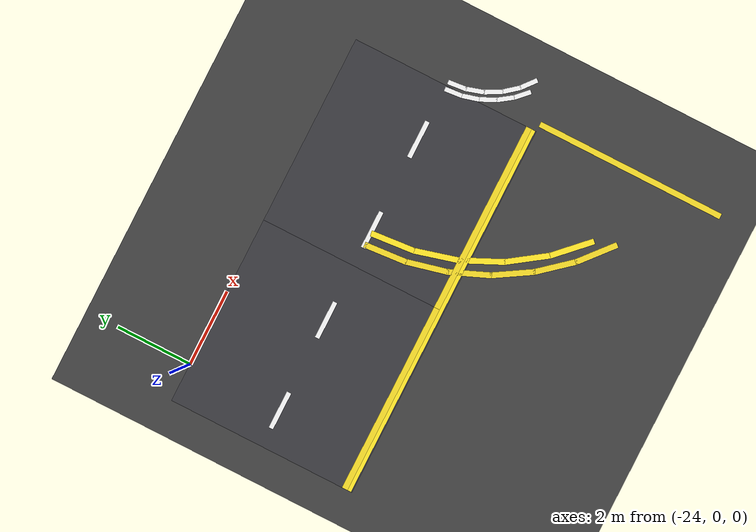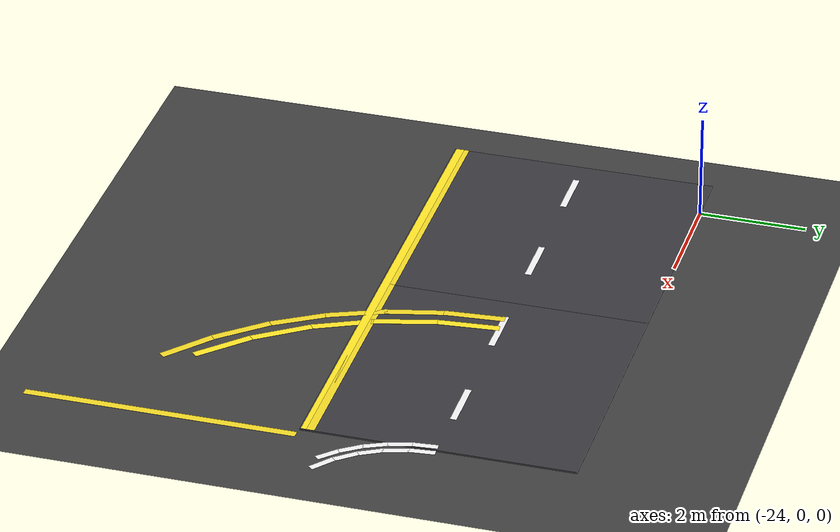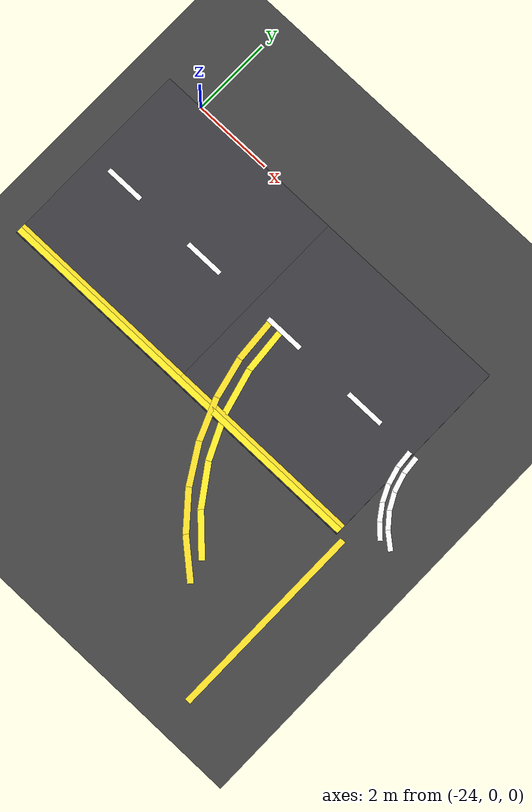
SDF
<sdf version="1.7">
 <world name="compact_city">
  <model name="ground_plane">
   <static>1</static>
   <pose>0 0 0.01 0 -0 0</pose>
   <link name="link">
    <collision name="collision">
     <geometry><plane><normal>0 0 1</normal><size>200 200</size></plane></geometry>
    </collision>
    <visual name="visual">
     <geometry><plane><normal>0 0 1</normal><size>200 200</size></plane></geometry>
     <material>
      <ambient>0.2 0.2 0.2 1</ambient>
      <diffuse>0.25 0.25 0.25 1</diffuse>
      <specular>0.1 0.1 0.1 1</specular>
     </material>
    </visual>
   </link>
  </model>
  <model name="road_tile_46">
   <static>1</static>
   <pose>-22.5 -2.5 0.015 0 -0 0</pose>
   <link name="link">
    <collision name="collision"><geometry><box><size>5 5 0.03</size></box></geometry></collision>
    <visual name="visual">
     <geometry><box><size>5 5 0.03</size></box></geometry>
     <material>
      <ambient>0.18 0.18 0.2 1</ambient>
      <diffuse>0.22 0.22 0.24 1</diffuse>
      <specular>0.1 0.1 0.1 1</specular>
     </material>
    </visual>
   </link>
  </model>
  <model name="road_tile_47">
   <static>1</static>
   <pose>-17.5 -2.5 0.015 0 -0 0</pose>
   <link name="link">
    <collision name="collision"><geometry><box><size>5 5 0.03</size></box></geometry></collision>
    <visual name="visual">
     <geometry><box><size>5 5 0.03</size></box></geometry>
     <material>
      <ambient>0.18 0.18 0.2 1</ambient>
      <diffuse>0.22 0.22 0.24 1</diffuse>
      <specular>0.1 0.1 0.1 1</specular>
     </material>
    </visual>
   </link>
  </model>
  <model name="el_149">
   <static>1</static>
   <pose>-22.5 -4.8 0.038 0 -0 0</pose>
   <link name="link">
    <visual name="v">
     <geometry><box><size>5 0.15 0.002</size></box></geometry>
     <material><ambient>0.9 0.8 0.1 1</ambient><diffuse>0.95 0.85 0.15 1</diffuse></material>
    </visual>
   </link>
  </model>
  <model name="el_157">
   <static>1</static>
   <pose>-17.5 -4.8 0.038 0 -0 0</pose>
   <link name="link">
    <visual name="v">
     <geometry><box><size>5 0.15 0.002</size></box></geometry>
     <material><ambient>0.9 0.8 0.1 1</ambient><diffuse>0.95 0.85 0.15 1</diffuse></material>
    </visual>
   </link>
  </model>
  <model name="el_167">
   <static>1</static>
   <pose>-14.8 -7.5 0.038 0 -0 1.5708</pose>
   <link name="link">
    <visual name="v">
     <geometry><box><size>5 0.15 0.002</size></box></geometry>
     <material><ambient>0.9 0.8 0.1 1</ambient><diffuse>0.95 0.85 0.15 1</diffuse></material>
    </visual>
   </link>
  </model>
  <model name="ld_101">
   <static>1</static>
   <pose>-24.0000 -2.5000 0.038 0 0 0</pose>
   <link name="link">
    <visual name="v">
     <geometry><box><size>1 0.12 0.002</size></box></geometry>
     <material><ambient>1 1 1 1</ambient><diffuse>0.95 0.95 0.95 1</diffuse></material>
    </visual>
   </link>
  </model>
  <model name="ld_102">
   <static>1</static>
   <pose>-21.5000 -2.5000 0.038 0 0 0</pose>
   <link name="link">
    <visual name="v">
     <geometry><box><size>1 0.12 0.002</size></box></geometry>
     <material><ambient>1 1 1 1</ambient><diffuse>0.95 0.95 0.95 1</diffuse></material>
    </visual>
   </link>
  </model>
  <model name="ld_103">
   <static>1</static>
   <pose>-19.0000 -2.5000 0.038 0 0 0</pose>
   <link name="link">
    <visual name="v">
     <geometry><box><size>1 0.12 0.002</size></box></geometry>
     <material><ambient>1 1 1 1</ambient><diffuse>0.95 0.95 0.95 1</diffuse></material>
    </visual>
   </link>
  </model>
  <model name="ld_104">
   <static>1</static>
   <pose>-16.5000 -2.5000 0.038 0 0 0</pose>
   <link name="link">
    <visual name="v">
     <geometry><box><size>1 0.12 0.002</size></box></geometry>
     <material><ambient>1 1 1 1</ambient><diffuse>0.95 0.95 0.95 1</diffuse></material>
    </visual>
   </link>
  </model>
  <model name="rr_658">
   <static>1</static>
   <pose>-14.8789 -2.7454 0.038 0 0 -1.47259</pose>
   <link name="link">
    <visual name="v">
     <geometry><box><size>0.486949 0.12 0.002</size></box></geometry>
     <material><ambient>1 1 1 1</ambient><diffuse>0.95 0.95 0.95 1</diffuse></material>
    </visual>
   </link>
  </model>
  <model name="rr_659">
   <static>1</static>
   <pose>-14.791 -3.1877 0.038 0 0 -1.27628</pose>
   <link name="link">
    <visual name="v">
     <geometry><box><size>0.486949 0.12 0.002</size></box></geometry>
     <material><ambient>1 1 1 1</ambient><diffuse>0.95 0.95 0.95 1</diffuse></material>
    </visual>
   </link>
  </model>
  <model name="rr_660">
   <static>1</static>
   <pose>-14.6184 -3.6042 0.038 0 0 -1.07988</pose>
   <link name="link">
    <visual name="v">
     <geometry><box><size>0.486949 0.12 0.002</size></box></geometry>
     <material><ambient>1 1 1 1</ambient><diffuse>0.95 0.95 0.95 1</diffuse></material>
    </visual>
   </link>
  </model>
  <model name="rr_661">
   <static>1</static>
   <pose>-14.3679 -3.9791 0.038 0 0 -0.883585</pose>
   <link name="link">
    <visual name="v">
     <geometry><box><size>0.486949 0.12 0.002</size></box></geometry>
     <material><ambient>1 1 1 1</ambient><diffuse>0.95 0.95 0.95 1</diffuse></material>
    </visual>
   </link>
  </model>
  <model name="rr_662">
   <static>1</static>
   <pose>-14.0491 -4.2979 0.038 0 0 -0.687185</pose>
   <link name="link">
    <visual name="v">
     <geometry><box><size>0.486949 0.12 0.002</size></box></geometry>
     <material><ambient>1 1 1 1</ambient><diffuse>0.95 0.95 0.95 1</diffuse></material>
    </visual>
   </link>
  </model>
  <model name="ro_694">
   <static>1</static>
   <pose>-19.369 -3.0535 0.038 0 0 -1.49229</pose>
   <link name="link">
    <visual name="v">
     <geometry><box><size>1.1204 0.15 0.002</size></box></geometry>
     <material><ambient>0.9 0.8 0.1 1</ambient><diffuse>0.95 0.85 0.15 1</diffuse></material>
    </visual>
   </link>
  </model>
  <model name="ro_695">
   <static>1</static>
   <pose>-19.2021 -4.1074 0.038 0 0 -1.33519</pose>
   <link name="link">
    <visual name="v">
     <geometry><box><size>1.1204 0.15 0.002</size></box></geometry>
     <material><ambient>0.9 0.8 0.1 1</ambient><diffuse>0.95 0.85 0.15 1</diffuse></material>
    </visual>
   </link>
  </model>
  <model name="ro_696">
   <static>1</static>
   <pose>-18.8724 -5.1222 0.038 0 0 -1.17809</pose>
   <link name="link">
    <visual name="v">
     <geometry><box><size>1.1204 0.15 0.002</size></box></geometry>
     <material><ambient>0.9 0.8 0.1 1</ambient><diffuse>0.95 0.85 0.15 1</diffuse></material>
    </visual>
   </link>
  </model>
  <model name="ro_697">
   <static>1</static>
   <pose>-18.388 -6.073 0.038 0 0 -1.02099</pose>
   <link name="link">
    <visual name="v">
     <geometry><box><size>1.1204 0.15 0.002</size></box></geometry>
     <material><ambient>0.9 0.8 0.1 1</ambient><diffuse>0.95 0.85 0.15 1</diffuse></material>
    </visual>
   </link>
  </model>
  <model name="ro_698">
   <static>1</static>
   <pose>-17.7608 -6.9362 0.038 0 0 -0.863985</pose>
   <link name="link">
    <visual name="v">
     <geometry><box><size>1.1204 0.15 0.002</size></box></geometry>
     <material><ambient>0.9 0.8 0.1 1</ambient><diffuse>0.95 0.85 0.15 1</diffuse></material>
    </visual>
   </link>
  </model>
  <model name="ro_699">
   <static>1</static>
   <pose>-17.0062 -7.6908 0.038 0 0 -0.706885</pose>
   <link name="link">
    <visual name="v">
     <geometry><box><size>1.1204 0.15 0.002</size></box></geometry>
     <material><ambient>0.9 0.8 0.1 1</ambient><diffuse>0.95 0.85 0.15 1</diffuse></material>
    </visual>
   </link>
  </model>
  <model name="edge_h_13">
   <static>1</static>
   <pose>-20 -4.9 0.038 0 -0 0</pose>
   <link name="link">
    <visual name="visual">
     <geometry><box><size>10 0.15 0.002</size></box></geometry>
     <material><ambient>0.95 0.85 0.1 1</ambient><diffuse>1 0.9 0.15 1</diffuse></material>
    </visual>
   </link>
  </model>
  <model name="ra_ring_519">
   <static>1</static>
   <pose>-15.071 -2.7371 0.038 0 0 -1.4835</pose>
   <link name="link">
    <visual name="visual">
     <geometry><box><size>0.455779 0.12 0.002</size></box></geometry>
     <material><ambient>1 1 1 1</ambient><diffuse>0.95 0.95 0.95 1</diffuse></material>
    </visual>
   </link>
  </model>
  <model name="ra_ring_520">
   <static>1</static>
   <pose>-14.9956 -3.1646 0.038 0 0 -1.309</pose>
   <link name="link">
    <visual name="visual">
     <geometry><box><size>0.455779 0.12 0.002</size></box></geometry>
     <material><ambient>1 1 1 1</ambient><diffuse>0.95 0.95 0.95 1</diffuse></material>
    </visual>
   </link>
  </model>
  <model name="ra_ring_521">
   <static>1</static>
   <pose>-14.8471 -3.5725 0.038 0 0 -1.1345</pose>
   <link name="link">
    <visual name="visual">
     <geometry><box><size>0.455779 0.12 0.002</size></box></geometry>
     <material><ambient>1 1 1 1</ambient><diffuse>0.95 0.95 0.95 1</diffuse></material>
    </visual>
   </link>
  </model>
  <model name="ra_ring_522">
   <static>1</static>
   <pose>-14.6301 -3.9485 0.038 0 0 -0.9599</pose>
   <link name="link">
    <visual name="visual">
     <geometry><box><size>0.455779 0.12 0.002</size></box></geometry>
     <material><ambient>1 1 1 1</ambient><diffuse>0.95 0.95 0.95 1</diffuse></material>
    </visual>
   </link>
  </model>
  <model name="ra_ring_523">
   <static>1</static>
   <pose>-14.351 -4.281 0.038 0 0 -0.7854</pose>
   <link name="link">
    <visual name="visual">
     <geometry><box><size>0.455779 0.12 0.002</size></box></geometry>
     <material><ambient>1 1 1 1</ambient><diffuse>0.95 0.95 0.95 1</diffuse></material>
    </visual>
   </link>
  </model>
  <model name="ra_outer_555">
   <static>1</static>
   <pose>-19.0406 -3.0844 0.038 0 0 -1.4835</pose>
   <link name="link">
    <visual name="visual">
     <geometry><box><size>1.15302 0.15 0.002</size></box></geometry>
     <material><ambient>0.95 0.85 0.1 1</ambient><diffuse>1 0.9 0.15 1</diffuse></material>
    </visual>
   </link>
  </model>
  <model name="ra_outer_556">
   <static>1</static>
   <pose>-18.8446 -4.1959 0.038 0 0 -1.309</pose>
   <link name="link">
    <visual name="visual">
     <geometry><box><size>1.15302 0.15 0.002</size></box></geometry>
     <material><ambient>0.95 0.85 0.1 1</ambient><diffuse>1 0.9 0.15 1</diffuse></material>
    </visual>
   </link>
  </model>
  <model name="ra_outer_557">
   <static>1</static>
   <pose>-18.4586 -5.2566 0.038 0 0 -1.1345</pose>
   <link name="link">
    <visual name="visual">
     <geometry><box><size>1.15302 0.15 0.002</size></box></geometry>
     <material><ambient>0.95 0.85 0.1 1</ambient><diffuse>1 0.9 0.15 1</diffuse></material>
    </visual>
   </link>
  </model>
  <model name="ra_outer_558">
   <static>1</static>
   <pose>-17.8942 -6.2341 0.038 0 0 -0.9599</pose>
   <link name="link">
    <visual name="visual">
     <geometry><box><size>1.15302 0.15 0.002</size></box></geometry>
     <material><ambient>0.95 0.85 0.1 1</ambient><diffuse>1 0.9 0.15 1</diffuse></material>
    </visual>
   </link>
  </model>
  <model name="ra_outer_559">
   <static>1</static>
   <pose>-17.1687 -7.0987 0.038 0 0 -0.7854</pose>
   <link name="link">
    <visual name="visual">
     <geometry><box><size>1.15302 0.15 0.002</size></box></geometry>
     <material><ambient>0.95 0.85 0.1 1</ambient><diffuse>1 0.9 0.15 1</diffuse></material>
    </visual>
   </link>
  </model>
 </world>
</sdf>
